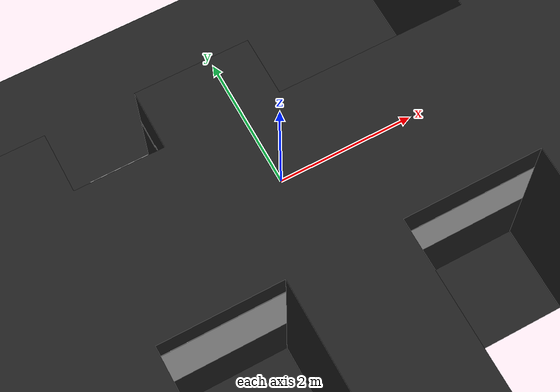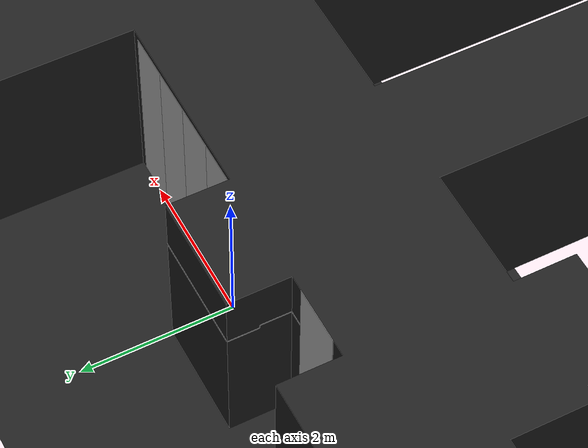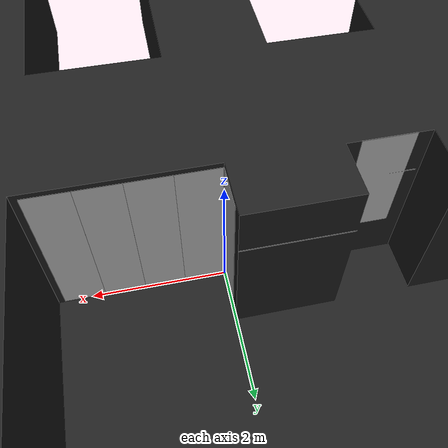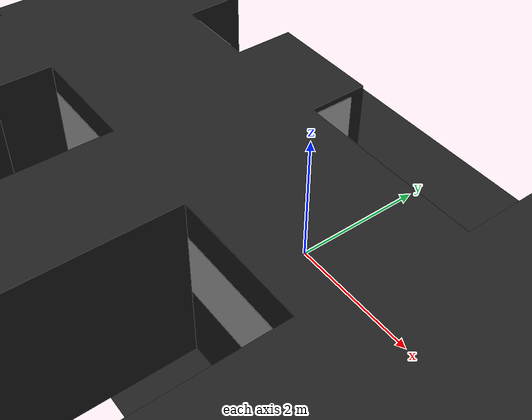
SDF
<sdf version="1.4">
 <world name="default">
  <light name="sun" type="directional">
   <pose>-1 -1 1.5 0 -0 0</pose>
   <diffuse>0.8 0.8 0.8 1</diffuse>
   <specular>0.2 0.2 0.2 1</specular>
   <attenuation>
    <range>1000</range>
    <constant>0.9</constant>
    <linear>0.01</linear>
    <quadratic>0.001</quadratic>
   </attenuation>
   <direction>-0.5 0 -1</direction>
  </light>
  <model name="ground_plane">
   <static>1</static>
   <link name="link">
    <collision name="collision">
     <geometry><plane><normal>0 0 1</normal><size>100 100</size></plane></geometry>
     <surface><friction><ode><mu>100</mu><mu2>50</mu2></ode></friction></surface>
    </collision>
    <visual name="visual">
     <cast_shadows>0</cast_shadows>
     <geometry><plane><normal>0 0 1</normal><size>100 100</size></plane></geometry>
     <material>
      <script><uri>file://media/materials/scripts/gazebo.material</uri><name>Gazebo/Black</name></script>
     </material>
    </visual>
    <velocity_decay><linear>0</linear><angular>0</angular></velocity_decay>
    <gravity>0</gravity>
   </link>
  </model>
  <physics type="ode">
   <max_step_size>0.1</max_step_size>
   <real_time_factor>1</real_time_factor>
   <real_time_update_rate>10</real_time_update_rate>
   <max_contacts>3</max_contacts>
   <gravity>0 0 -9.8</gravity>
   <ode><solver><min_step_size>0.1</min_step_size><iters>1</iters></solver></ode>
  </physics>
  <scene><ambient>0.4 0.4 0.4 1</ambient><background>0.7 0.7 0.7 1</background><shadows>1</shadows></scene>
  <model name="lab_with_windows_2">
   <static>1</static>
   <link name="link">
    <inertial><mass>1000</mass></inertial>
    <visual name="visual">
     <geometry><mesh><uri>model://lab_with_windows/meshes/lab_with_windows.stl</uri></mesh></geometry>
     <material>
      <script><uri>file://media/materials/scripts/gazebo.material</uri><name>Gazebo/Black</name></script>
     </material>
    </visual>
    <velocity_decay><linear>0</linear><angular>0</angular></velocity_decay>
    <gravity>0</gravity>
   </link>
  </model>
  <model name="wall_plumbing">
   <static>1</static>
   <link name="link">
    <visual name="visual">
     <cast_shadows>0</cast_shadows>
     <geometry><box><size>0.88946 1.8474 0.007</size></box></geometry>
     <material>
      <script>
       <uri>model://wall_plumbing/materials/scripts</uri>
       <uri>model://wall_plumbing/materials/textures</uri>
       <name>wall_plumbing</name>
      </script>
     </material>
    </visual>
    <velocity_decay><linear>0</linear><angular>0</angular></velocity_decay>
    <gravity>0</gravity>
   </link>
   <pose>1.37464 -2.088 1.54 0 -1.5707 -1.5707</pose>
  </model>
  <model name="electrical_drawing">
   <static>1</static>
   <link name="link">
    <visual name="visual">
     <geometry><box><size>1.09992 1.59928 0.007</size></box></geometry>
     <material>
      <script>
       <uri>model://electrical_drawing/materials/scripts</uri>
       <uri>model://electrical_drawing/materials/textures</uri>
       <name>electrical_drawing</name>
      </script>
     </material>
    </visual>
    <velocity_decay><linear>0</linear><angular>0</angular></velocity_decay>
    <gravity>0</gravity>
   </link>
   <pose>-1.85 -2.09 1.55 0 1.5707 -1.5707</pose>
  </model>
  <model name="fire_hose_reel">
   <static>1</static>
   <link name="link">
    <visual name="visual">
     <geometry><box><size>1.763 0.732 0.007</size></box></geometry>
     <material>
      <script>
       <uri>model://fire_hose_reel/materials/scripts</uri>
       <uri>model://fire_hose_reel/materials/textures</uri>
       <name>fire_hose_reel</name>
      </script>
     </material>
    </visual>
    <velocity_decay><linear>0</linear><angular>0</angular></velocity_decay>
    <gravity>0</gravity>
   </link>
   <pose>-2.07295 0.003 1.62 0.000573 -1.57079 1.57079</pose>
  </model>
  <model name="fire_extinguisher_drawing">
   <pose>-1.49637 0.380286 1.37 -0.000425 -1.5707 -3.1415</pose>
   <static>1</static>
   <link name="link">
    <visual name="visual">
     <cast_shadows>0</cast_shadows>
     <geometry><box><size>0.63 0.27 0.007</size></box></geometry>
     <material>
      <script>
       <uri>model://fire_extinguisher_drawing/materials/scripts</uri>
       <uri>model://fire_extinguisher_drawing/materials/textures</uri>
       <name>fire_extinguisher_drawing</name>
      </script>
     </material>
    </visual>
    <velocity_decay><linear>0</linear><angular>0</angular></velocity_decay>
   </link>
  </model>
  <model name="dot_grid">
   <pose>0.002252 0.309368 1.22 0 1.5707 0</pose>
   <static>1</static>
   <link name="link">
    <visual name="visual">
     <cast_shadows>0</cast_shadows>
     <geometry><box><size>2.4 0.6 0.007</size></box></geometry>
     <material>
      <script>
       <uri>model://dot_grid/materials/scripts</uri>
       <uri>model://dot_grid/materials/textures</uri>
       <name>dot_grid</name>
      </script>
     </material>
    </visual>
    <velocity_decay><linear>0</linear><angular>0</angular></velocity_decay>
   </link>
  </model>
  <model name="dot_grid_0">
   <static>1</static>
   <link name="link">
    <visual name="visual">
     <cast_shadows>0</cast_shadows>
     <geometry><box><size>2.4 0.6 0.007</size></box></geometry>
     <material>
      <script>
       <uri>model://dot_grid/materials/scripts</uri>
       <uri>model://dot_grid/materials/textures</uri>
       <name>dot_grid</name>
      </script>
     </material>
    </visual>
    <velocity_decay><linear>0</linear><angular>0</angular></velocity_decay>
   </link>
   <pose>0.308878 -0.000314 1.22 0.000572 -1.5707 1.57013</pose>
  </model>
  <model name="dot_grid_1">
   <pose>0.908878 -0.000314 1.22 0.000572 -1.5707 1.57013</pose>
   <static>1</static>
   <link name="link">
    <visual name="visual">
     <cast_shadows>0</cast_shadows>
     <geometry><box><size>2.4 0.6 0.007</size></box></geometry>
     <material>
      <script>
       <uri>model://dot_grid/materials/scripts</uri>
       <uri>model://dot_grid/materials/textures</uri>
       <name>dot_grid</name>
      </script>
     </material>
    </visual>
    <velocity_decay><linear>0</linear><angular>0</angular></velocity_decay>
   </link>
  </model>
  <model name="dot_grid_2">
   <pose>1.508878 -0.000314 1.22 0.000572 -1.5707 1.57013</pose>
   <static>1</static>
   <link name="link">
    <visual name="visual">
     <cast_shadows>0</cast_shadows>
     <geometry><box><size>2.4 0.6 0.007</size></box></geometry>
     <material>
      <script>
       <uri>model://dot_grid/materials/scripts</uri>
       <uri>model://dot_grid/materials/textures</uri>
       <name>dot_grid</name>
      </script>
     </material>
    </visual>
    <velocity_decay><linear>0</linear><angular>0</angular></velocity_decay>
   </link>
  </model>
  <model name="dot_grid_3">
   <pose>2.108878 -0.000314 1.22 0.000572 -1.5707 1.57013</pose>
   <static>1</static>
   <link name="link">
    <visual name="visual">
     <cast_shadows>0</cast_shadows>
     <geometry><box><size>2.4 0.6 0.007</size></box></geometry>
     <material>
      <script>
       <uri>model://dot_grid/materials/scripts</uri>
       <uri>model://dot_grid/materials/textures</uri>
       <name>dot_grid</name>
      </script>
     </material>
    </visual>
    <velocity_decay><linear>0</linear><angular>0</angular></velocity_decay>
   </link>
  </model>
  <model name="wall_pipe">
   <pose>0.001361 0.806656 1.78 1.5707 -5.55112e-17 -1.5707</pose>
   <static>1</static>
   <link name="link">
    <inertial><mass>10</mass></inertial>
    <visual name="visual">
     <transparency>0.2</transparency>
     <geometry><mesh><uri>model://wall_pipe/meshes/wall_pipe.stl</uri></mesh></geometry>
    </visual>
    <velocity_decay><linear>0</linear><angular>0</angular></velocity_decay>
   </link>
  </model>
 </world>
</sdf>
